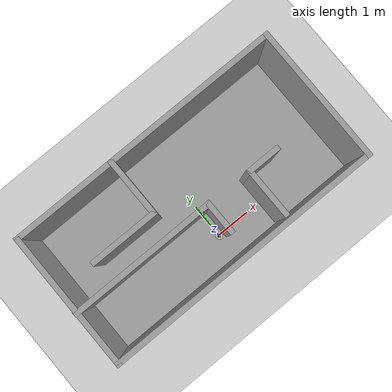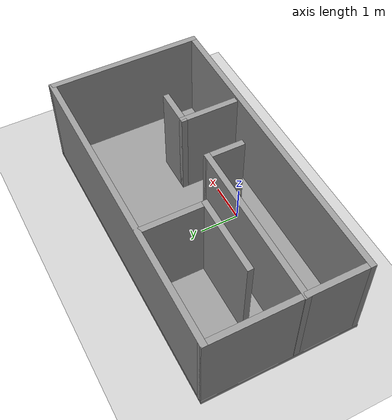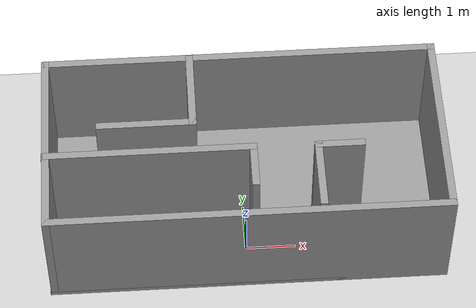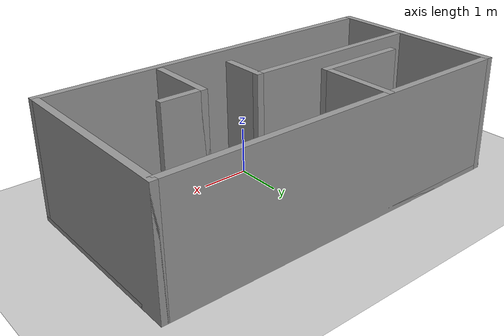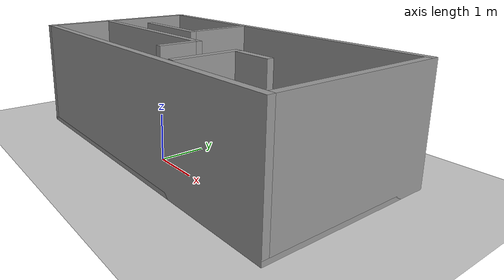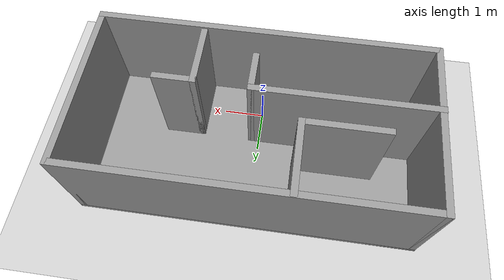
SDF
<sdf version="1.7">
 <world name="default">
  <light name="sun" type="directional">
   <pose>0 0 10 0 -0 0</pose>
   <diffuse>0.8 0.8 0.8 1</diffuse>
   <specular>0.2 0.2 0.2 1</specular>
   <attenuation>
    <range>1000</range>
    <constant>0.9</constant>
    <linear>0.01</linear>
    <quadratic>0.001</quadratic>
   </attenuation>
   <direction>-0.5 0.1 -0.9</direction>
   <spot><inner_angle>0</inner_angle><outer_angle>0</outer_angle><falloff>0</falloff></spot>
  </light>
  <model name="ground_plane">
   <static>1</static>
   <link name="link">
    <collision name="collision">
     <geometry><plane><normal>0 0 1</normal><size>100 100</size></plane></geometry>
     <surface>
      <contact><collide_bitmask>65535</collide_bitmask></contact>
      <friction><ode><mu>100</mu><mu2>50</mu2></ode></friction>
     </surface>
    </collision>
    <visual name="visual">
     <cast_shadows>0</cast_shadows>
     <geometry><plane><normal>0 0 1</normal><size>100 100</size></plane></geometry>
     <material>
      <script><uri>file://media/materials/scripts/gazebo.material</uri><name>Gazebo/Grey</name></script>
     </material>
    </visual>
   </link>
  </model>
  <gravity>0 0 -9.8</gravity>
  <magnetic_field>6e-06 2.3e-05 -4.2e-05</magnetic_field>
  <atmosphere type="adiabatic"/>
  <physics type="ode">
   <max_step_size>0.001</max_step_size>
   <real_time_factor>1</real_time_factor>
   <real_time_update_rate>1000</real_time_update_rate>
  </physics>
  <scene><ambient>0.4 0.4 0.4 1</ambient><background>0.7 0.7 0.7 1</background><shadows>1</shadows></scene>
  <audio><device>default</device></audio>
  <spherical_coordinates>
   <surface_model>EARTH_WGS84</surface_model>
   <latitude_deg>0</latitude_deg>
   <longitude_deg>0</longitude_deg>
   <elevation>0</elevation>
   <heading_deg>0</heading_deg>
  </spherical_coordinates>
  <model name="room">
   <pose>0.023696 -0.00759 0 0 -0 0</pose>
   <link name="Floor_0">
    <collision name="Floor_0_Collision">
     <geometry><box><size>8.01323 4 0.1</size></box></geometry>
     <pose>0 0 0.05 0 -0 0</pose>
    </collision>
    <visual name="Floor_0_Visual">
     <pose>0 0 0.05 0 -0 0</pose>
     <geometry><box><size>8.01323 4 0.1</size></box></geometry>
     <material>
      <script><uri>file://media/materials/scripts/gazebo.material</uri><name>Gazebo/Grey</name></script>
      <ambient>1 1 1 1</ambient>
     </material>
     <meta><layer>0</layer></meta>
    </visual>
    <pose>0 1.13183 0 0 -0 0</pose>
   </link>
   <link name="Wall_11">
    <collision name="Wall_11_Collision">
     <geometry><box><size>1.75 0.15 2.5</size></box></geometry>
     <pose>0 0 1.25 0 -0 0</pose>
    </collision>
    <visual name="Wall_11_Visual">
     <pose>0 0 1.25 0 -0 0</pose>
     <geometry><box><size>1.75 0.15 2.5</size></box></geometry>
     <material>
      <script><uri>file://media/materials/scripts/gazebo.material</uri><name>Gazebo/Grey</name></script>
      <ambient>1 1 1 1</ambient>
     </material>
     <meta><layer>0</layer></meta>
    </visual>
    <pose>-0.995663 2.24361 0 0 -0 -1.5708</pose>
   </link>
   <link name="Wall_12">
    <collision name="Wall_12_Collision">
     <geometry><box><size>2 0.15 2.5</size></box></geometry>
     <pose>0 0 1.25 0 -0 0</pose>
    </collision>
    <visual name="Wall_12_Visual">
     <pose>0 0 1.25 0 -0 0</pose>
     <geometry><box><size>2 0.15 2.5</size></box></geometry>
     <material>
      <script><uri>file://media/materials/scripts/gazebo.material</uri><name>Gazebo/Grey</name></script>
      <ambient>1 1 1 1</ambient>
     </material>
     <meta><layer>0</layer></meta>
    </visual>
    <pose>-1.92066 1.44361 0 0 -0 3.14159</pose>
   </link>
   <link name="Wall_14">
    <collision name="Wall_14_Collision">
     <geometry><box><size>4.25 0.15 2.5</size></box></geometry>
     <pose>0 0 1.25 0 -0 0</pose>
    </collision>
    <visual name="Wall_14_Visual">
     <pose>0 0 1.25 0 -0 0</pose>
     <geometry><box><size>4.25 0.15 2.5</size></box></geometry>
     <material>
      <script><uri>file://media/materials/scripts/gazebo.material</uri><name>Gazebo/Grey</name></script>
      <ambient>1 1 1 1</ambient>
     </material>
     <meta><layer>0</layer></meta>
    </visual>
    <pose>-1.88161 0.768909 0 0 -0 0</pose>
   </link>
   <link name="Wall_15">
    <collision name="Wall_15_Collision">
     <geometry><box><size>1 0.15 2.5</size></box></geometry>
     <pose>0 0 1.25 0 -0 0</pose>
    </collision>
    <visual name="Wall_15_Visual">
     <pose>0 0 1.25 0 -0 0</pose>
     <geometry><box><size>1 0.15 2.5</size></box></geometry>
     <material>
      <script><uri>file://media/materials/scripts/gazebo.material</uri><name>Gazebo/Grey</name></script>
      <ambient>1 1 1 1</ambient>
     </material>
     <meta><layer>0</layer></meta>
    </visual>
    <pose>0.168387 0.343909 0 0 -0 -1.5708</pose>
   </link>
   <link name="Wall_17">
    <collision name="Wall_17_Collision">
     <geometry><box><size>1.5 0.15 2.5</size></box></geometry>
     <pose>0 0 1.25 0 -0 0</pose>
    </collision>
    <visual name="Wall_17_Visual">
     <pose>0 0 1.25 0 -0 0</pose>
     <geometry><box><size>1.5 0.15 2.5</size></box></geometry>
     <material>
      <script><uri>file://media/materials/scripts/gazebo.material</uri><name>Gazebo/Grey</name></script>
      <ambient>1 1 1 1</ambient>
     </material>
     <meta><layer>0</layer></meta>
    </visual>
    <pose>1.45096 0.067459 0 0 -0 -1.5708</pose>
   </link>
   <link name="Wall_19">
    <collision name="Wall_19_Collision">
     <geometry><box><size>1 0.15 2.5</size></box></geometry>
     <pose>0 0 1.25 0 -0 0</pose>
    </collision>
    <visual name="Wall_19_Visual">
     <pose>0 0 1.25 0 -0 0</pose>
     <geometry><box><size>1 0.15 2.5</size></box></geometry>
     <material>
      <script><uri>file://media/materials/scripts/gazebo.material</uri><name>Gazebo/Grey</name></script>
      <ambient>1 1 1 1</ambient>
     </material>
     <meta><layer>0</layer></meta>
    </visual>
    <pose>1.87596 0.742459 0 0 -0 0</pose>
   </link>
   <link name="Wall_6">
    <collision name="Wall_6_Collision">
     <geometry><box><size>8 0.15 2.5</size></box></geometry>
     <pose>0 0 1.25 0 -0 0</pose>
    </collision>
    <visual name="Wall_6_Visual">
     <pose>0 0 1.25 0 -0 0</pose>
     <geometry><box><size>8 0.15 2.5</size></box></geometry>
     <material>
      <script><uri>file://media/materials/scripts/gazebo.material</uri><name>Gazebo/Grey</name></script>
      <ambient>1 1 1 1</ambient>
     </material>
     <meta><layer>0</layer></meta>
    </visual>
    <pose>0.006612 3.05683 0 0 -0 0</pose>
   </link>
   <link name="Wall_7">
    <collision name="Wall_7_Collision">
     <geometry><box><size>4 0.15 2.5</size></box></geometry>
     <pose>0 0 1.25 0 -0 0</pose>
    </collision>
    <visual name="Wall_7_Visual">
     <pose>0 0 1.25 0 -0 0</pose>
     <geometry><box><size>4 0.15 2.5</size></box></geometry>
     <material>
      <script><uri>file://media/materials/scripts/gazebo.material</uri><name>Gazebo/Grey</name></script>
      <ambient>1 1 1 1</ambient>
     </material>
     <meta><layer>0</layer></meta>
    </visual>
    <pose>3.93161 1.13183 0 0 -0 -1.5708</pose>
   </link>
   <link name="Wall_8">
    <collision name="Wall_8_Collision">
     <geometry><box><size>8 0.15 2.5</size></box></geometry>
     <pose>0 0 1.25 0 -0 0</pose>
    </collision>
    <visual name="Wall_8_Visual">
     <pose>0 0 1.25 0 -0 0</pose>
     <geometry><box><size>8 0.15 2.5</size></box></geometry>
     <material>
      <script><uri>file://media/materials/scripts/gazebo.material</uri><name>Gazebo/Grey</name></script>
      <ambient>1 1 1 1</ambient>
     </material>
     <meta><layer>0</layer></meta>
    </visual>
    <pose>0.006612 -0.793166 0 0 -0 3.14159</pose>
   </link>
   <link name="Wall_9">
    <collision name="Wall_9_Collision">
     <geometry><box><size>4 0.15 2.5</size></box></geometry>
     <pose>0 0 1.25 0 -0 0</pose>
    </collision>
    <visual name="Wall_9_Visual">
     <pose>0 0 1.25 0 -0 0</pose>
     <geometry><box><size>4 0.15 2.5</size></box></geometry>
     <material>
      <script><uri>file://media/materials/scripts/gazebo.material</uri><name>Gazebo/Grey</name></script>
      <ambient>1 1 1 1</ambient>
     </material>
     <meta><layer>0</layer></meta>
    </visual>
    <pose>-3.91839 1.13183 0 0 -0 1.5708</pose>
   </link>
   <static>1</static>
  </model>
  <model name="fishbot">
   <link name="base_footprint">
    <inertial>
     <pose>0.007143 0 0.105929 0 -0 0</pose>
     <mass>1.4</mass>
     <inertia>
      <ixx>0.00778458</ixx>
      <ixy>0</ixy>
      <ixz>-0.000600714</ixz>
      <iyy>0.00927315</iyy>
      <iyz>0</iyz>
      <izz>0.00669131</izz>
     </inertia>
    </inertial>
    <collision name="base_footprint_fixed_joint_lump__base_link_collision">
     <pose>0 0 0.091 0 -0 0</pose>
     <geometry><cylinder><length>0.12</length><radius>0.1</radius></cylinder></geometry>
    </collision>
    <collision name="base_footprint_fixed_joint_lump__back_caster_link_collision_1">
     <pose>-0.08 0 0.015 0 -0 0</pose>
     <geometry><sphere><radius>0.016</radius></sphere></geometry>
     <surface>
      <contact><ode><kp>1e+07</kp><kd>1</kd></ode></contact>
      <friction><ode><mu>0</mu><mu2>0</mu2></ode></friction>
     </surface>
    </collision>
    <collision name="base_footprint_fixed_joint_lump__camera_link_collision_2">
     <pose>0.1 0 0.166 0 -0 0</pose>
     <geometry><box><size>0.06 0.02 0.02</size></box></geometry>
    </collision>
    <collision name="base_footprint_fixed_joint_lump__front_caster_link_collision_3">
     <pose>0.08 0 0.015 0 -0 0</pose>
     <geometry><sphere><radius>0.016</radius></sphere></geometry>
     <surface>
      <contact><ode><kp>1e+07</kp><kd>1</kd></ode></contact>
      <friction><ode><mu>0</mu><mu2>0</mu2></ode></friction>
     </surface>
    </collision>
    <collision name="base_footprint_fixed_joint_lump__imu_link_collision_4">
     <pose>0 0 0.111 0 -0 0</pose>
     <geometry><box><size>0.02 0.02 0.02</size></box></geometry>
    </collision>
    <collision name="base_footprint_fixed_joint_lump__laser_cylinder_link_collision_5">
     <pose>0 0 0.191 0 -0 0</pose>
     <geometry><cylinder><length>0.1</length><radius>0.01</radius></cylinder></geometry>
    </collision>
    <collision name="base_footprint_fixed_joint_lump__laser_link_collision_6">
     <pose>0 0 0.241 0 -0 0</pose>
     <geometry><cylinder><length>0.02</length><radius>0.05</radius></cylinder></geometry>
    </collision>
    <visual name="base_footprint_fixed_joint_lump__base_link_visual">
     <pose>0 0 0.091 0 -0 0</pose>
     <geometry><cylinder><length>0.12</length><radius>0.1</radius></cylinder></geometry>
    </visual>
    <visual name="base_footprint_fixed_joint_lump__back_caster_link_visual_1">
     <pose>-0.08 0 0.015 0 -0 0</pose>
     <geometry><sphere><radius>0.016</radius></sphere></geometry>
     <material>
      <script><name>Gazebo/Red</name><uri>file://media/materials/scripts/gazebo.material</uri></script>
     </material>
    </visual>
    <visual name="base_footprint_fixed_joint_lump__camera_link_visual_2">
     <pose>0.1 0 0.166 0 -0 0</pose>
     <geometry><box><size>0.02 0.1 0.02</size></box></geometry>
    </visual>
    <visual name="base_footprint_fixed_joint_lump__front_caster_link_visual_3">
     <pose>0.08 0 0.015 0 -0 0</pose>
     <geometry><sphere><radius>0.016</radius></sphere></geometry>
     <material>
      <script><name>Gazebo/Red</name><uri>file://media/materials/scripts/gazebo.material</uri></script>
     </material>
    </visual>
    <visual name="base_footprint_fixed_joint_lump__imu_link_visual_4">
     <pose>0 0 0.111 0 -0 0</pose>
     <geometry><box><size>0.02 0.02 0.02</size></box></geometry>
    </visual>
    <visual name="base_footprint_fixed_joint_lump__laser_cylinder_link_visual_5">
     <pose>0 0 0.191 0 -0 0</pose>
     <geometry><cylinder><length>0.1</length><radius>0.01</radius></cylinder></geometry>
     <material>
      <script><name>Gazebo/Black</name><uri>file://media/materials/scripts/gazebo.material</uri></script>
     </material>
    </visual>
    <visual name="base_footprint_fixed_joint_lump__laser_link_visual_6">
     <pose>0 0 0.241 0 -0 0</pose>
     <geometry><cylinder><length>0.02</length><radius>0.05</radius></cylinder></geometry>
     <material>
      <script><name>Gazebo/Black</name><uri>file://media/materials/scripts/gazebo.material</uri></script>
     </material>
    </visual>
    <sensor name="depth_camera" type="camera">
     <plugin name="depth_camera" filename="libgazebo_ros_camera.so">
      <ros>
       <namespace>fishbot</namespace>
       <remapping>image_raw:=camera/rgb/image_raw</remapping>
       <remapping>depth/image_raw:=camera/depth/image_raw</remapping>
       <remapping>camera_info:=camera/camera_info</remapping>
       <remapping>points:=camera/depth/points</remapping>
      </ros>
      <frame_name>camera_optical_link</frame_name>
      <depth_camera>1</depth_camera>
      <point_cloud>1</point_cloud>
      <point_cloud_cutoff>0.1</point_cloud_cutoff>
      <pixel_format>L8</pixel_format>
      <output_type>sensor_msgs/PointCloud2</output_type>
     </plugin>
     <always_on>1</always_on>
     <update_rate>10</update_rate>
     <visualize>1</visualize>
     <camera name="camera">
      <horizontal_fov>1.50098</horizontal_fov>
      <image><width>800</width><height>600</height><format>R8G8B8</format></image>
      <distortion><k1>0</k1><k2>0</k2><k3>0</k3><p1>0</p1><p2>0</p2><center>0.5 0.5</center></distortion>
      <clip><near>0.1</near><far>100</far></clip>
      <depth><near>0.1</near><far>5.0</far></depth>
     </camera>
     <pose>0.1 0 0.166 0 -0 0</pose>
    </sensor>
    <sensor name="imu" type="imu">
     <plugin name="imu" filename="libgazebo_ros_imu_sensor.so">
      <ros><namespace>fishbot</namespace><remapping>~/out:=imu</remapping></ros>
     </plugin>
     <always_on>1</always_on>
     <update_rate>100</update_rate>
     <always_on>1</always_on>
     <imu>
      <angular_velocity>
       <x>
        <noise type="gaussian">
         <mean>0</mean>
         <stddev>0.0002</stddev>
         <bias_mean>7.5e-06</bias_mean>
         <bias_stddev>8e-07</bias_stddev>
        </noise>
       </x>
       <y>
        <noise type="gaussian">
         <mean>0</mean>
         <stddev>0.0002</stddev>
         <bias_mean>7.5e-06</bias_mean>
         <bias_stddev>8e-07</bias_stddev>
        </noise>
       </y>
       <z>
        <noise type="gaussian">
         <mean>0</mean>
         <stddev>0.0002</stddev>
         <bias_mean>7.5e-06</bias_mean>
         <bias_stddev>8e-07</bias_stddev>
        </noise>
       </z>
      </angular_velocity>
      <linear_acceleration>
       <x>
        <noise type="gaussian">
         <mean>0</mean>
         <stddev>0.017</stddev>
         <bias_mean>0</bias_mean>
         <bias_stddev>0.001</bias_stddev>
        </noise>
       </x>
       <y>
        <noise type="gaussian">
         <mean>0</mean>
         <stddev>0.017</stddev>
         <bias_mean>0</bias_mean>
         <bias_stddev>0.001</bias_stddev>
        </noise>
       </y>
       <z>
        <noise type="gaussian">
         <mean>0</mean>
         <stddev>0.017</stddev>
         <bias_mean>0</bias_mean>
         <bias_stddev>0.001</bias_stddev>
        </noise>
       </z>
      </linear_acceleration>
     </imu>
     <pose>0 0 0.111 0 -0 0</pose>
    </sensor>
    <sensor name="laserscan" type="ray">
     <plugin name="laserscan" filename="libgazebo_ros_ray_sensor.so">
      <ros><namespace>fishbot</namespace><remapping>~/out:=scan</remapping></ros>
      <output_type>sensor_msgs/LaserScan</output_type>
      <frame_name>laser_link</frame_name>
     </plugin>
     <always_on>1</always_on>
     <visualize>1</visualize>
     <update_rate>5</update_rate>
     <ray>
      <scan>
       <horizontal>
        <samples>360</samples>
        <resolution>1</resolution>
        <min_angle>0</min_angle>
        <max_angle>6.28</max_angle>
       </horizontal>
       <vertical><samples>1</samples><min_angle>0</min_angle><max_angle>0</max_angle></vertical>
      </scan>
      <range><min>0.12</min><max>8</max><resolution>0.015</resolution></range>
      <noise><type>gaussian</type><mean>0</mean><stddev>0.01</stddev></noise>
     </ray>
     <pose>0 0 0.241 0 -0 0</pose>
    </sensor>
   </link>
   <joint name="left_wheel_joint" type="revolute">
    <pose relative_to="base_footprint">0 0.1 0.031 0 -0 0</pose>
    <parent>base_footprint</parent>
    <child>left_wheel_link</child>
    <axis>
     <xyz>0 1 0</xyz>
     <limit><lower>-1e+16</lower><upper>1e+16</upper></limit>
     <dynamics><spring_reference>0</spring_reference><spring_stiffness>0</spring_stiffness></dynamics>
    </axis>
   </joint>
   <link name="left_wheel_link">
    <pose relative_to="left_wheel_joint">0 0 0 0 -0 0</pose>
    <inertial>
     <mass>0.05</mass>
     <inertia>
      <ixx>1.94667e-05</ixx>
      <ixy>0</ixy>
      <ixz>0</ixz>
      <iyy>1.94667e-05</iyy>
      <iyz>0</iyz>
      <izz>2.56e-05</izz>
     </inertia>
    </inertial>
    <collision name="left_wheel_link_collision">
     <pose>0 0 0 1.57079 -0 0</pose>
     <geometry><cylinder><length>0.04</length><radius>0.032</radius></cylinder></geometry>
     <surface>
      <contact><ode><kp>1e+07</kp><kd>1</kd></ode></contact>
      <friction><ode><mu>20</mu><mu2>20</mu2></ode></friction>
     </surface>
    </collision>
    <visual name="left_wheel_link_visual">
     <pose>0 0 0 1.57079 -0 0</pose>
     <geometry><cylinder><length>0.04</length><radius>0.032</radius></cylinder></geometry>
     <material>
      <script><name>Gazebo/Yellow</name><uri>file://media/materials/scripts/gazebo.material</uri></script>
     </material>
    </visual>
   </link>
   <joint name="right_wheel_joint" type="revolute">
    <pose relative_to="base_footprint">0 -0.1 0.031 0 -0 0</pose>
    <parent>base_footprint</parent>
    <child>right_wheel_link</child>
    <axis>
     <xyz>0 1 0</xyz>
     <limit><lower>-1e+16</lower><upper>1e+16</upper></limit>
     <dynamics><spring_reference>0</spring_reference><spring_stiffness>0</spring_stiffness></dynamics>
    </axis>
   </joint>
   <link name="right_wheel_link">
    <pose relative_to="right_wheel_joint">0 0 0 0 -0 0</pose>
    <inertial>
     <mass>0.05</mass>
     <inertia>
      <ixx>1.94667e-05</ixx>
      <ixy>0</ixy>
      <ixz>0</ixz>
      <iyy>1.94667e-05</iyy>
      <iyz>0</iyz>
      <izz>2.56e-05</izz>
     </inertia>
    </inertial>
    <collision name="right_wheel_link_collision">
     <pose>0 0 0 1.57079 -0 0</pose>
     <geometry><cylinder><length>0.04</length><radius>0.032</radius></cylinder></geometry>
     <surface>
      <contact><ode><kp>1e+07</kp><kd>1</kd></ode></contact>
      <friction><ode><mu>20</mu><mu2>20</mu2></ode></friction>
     </surface>
    </collision>
    <visual name="right_wheel_link_visual">
     <pose>0 0 0 1.57079 -0 0</pose>
     <geometry><cylinder><length>0.04</length><radius>0.032</radius></cylinder></geometry>
     <material>
      <script><name>Gazebo/Yellow</name><uri>file://media/materials/scripts/gazebo.material</uri></script>
     </material>
    </visual>
   </link>
   <static>0</static>
   <plugin name="diff_drive" filename="libgazebo_ros_diff_drive.so">
    <ros>
     <namespace>fishbot</namespace>
     <remapping>cmd_vel:=cmd_vel</remapping>
     <remapping>odom:=odom</remapping>
    </ros>
    <update_rate>30</update_rate>
    <left_joint>left_wheel_joint</left_joint>
    <right_joint>right_wheel_joint</right_joint>
    <wheel_separation>0.2</wheel_separation>
    <wheel_radius>0.032</wheel_radius>
    <wheel_diameter>0.064</wheel_diameter>
    <max_wheel_torque>20</max_wheel_torque>
    <max_wheel_acceleration>1.0</max_wheel_acceleration>
    <publish_odom>1</publish_odom>
    <publish_odom_tf>1</publish_odom_tf>
    <publish_wheel_tf>1</publish_wheel_tf>
    <odometry_frame>odom</odometry_frame>
    <robot_base_frame>base_footprint</robot_base_frame>
   </plugin>
   <pose>-0.013594 -0.000263 0.100999 0 1e-06 -0.001187</pose>
  </model>
 </world>
</sdf>
